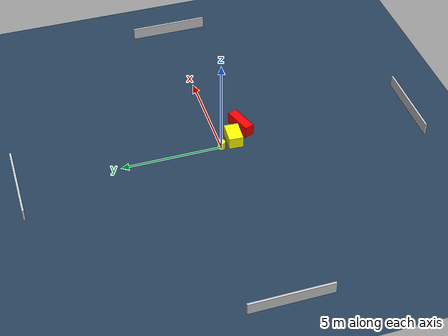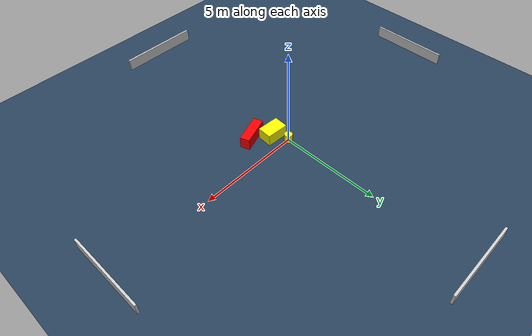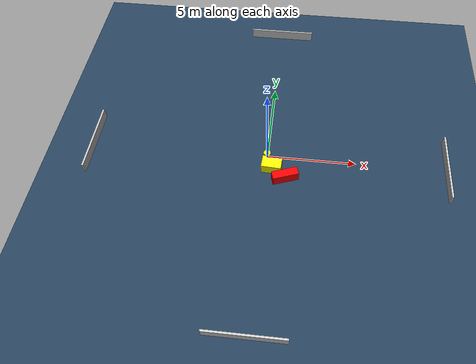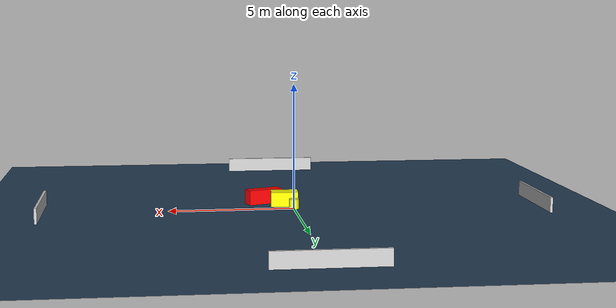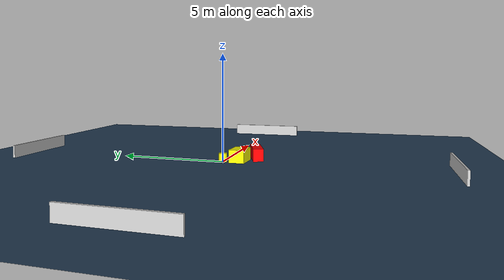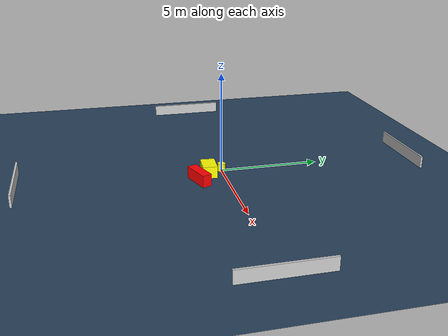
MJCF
<?xml version="1.0" ?>
<mujoco model="generated_environment">
  <option timestep="0.01" integrator="RK4" cone="elliptic"/>
  <default>
    <geom density="1"/>
  </default>
  <asset>
    <texture builtin="gradient" height="3072" name="skybox" rgb1="0.3 0.5 0.7" rgb2="0 0 0" type="skybox" width="512"/>
    <texture builtin="checker" height="300" name="groundplane" rgb1="0.2 0.3 0.4" rgb2="0.1 0.2 0.3" type="2d" width="300"/>
    <material name="groundplane" reflectance="0.2" texrepeat="5 5" texture="groundplane"/>
  </asset>
  <worldbody>
    <light dir="0 0 -1" directional="true" pos="0 0 1.5"/>
    <geom condim="3" friction="0.5 0.005 0.001" material="groundplane" name="floor" pos="0 0 0" size="0 0 0.05" type="plane"/>
    <body name="walls">
      <geom name="wall_1" condim="4" pos="-10.0 0.0 0.3" rgba="0.800000011920929 0.800000011920929 0.800000011920929 1.0" size="0.05 2.0 0.3" type="box"/>
      <geom name="wall_2" condim="4" pos="10.0 0.0 0.3" rgba="0.800000011920929 0.800000011920929 0.800000011920929 1.0" size="0.05 2.0 0.3" type="box"/>
      <geom name="wall_3" condim="4" pos="0.0 -10.0 0.3" rgba="0.800000011920929 0.800000011920929 0.800000011920929 1.0" size="2.0 0.05 0.3" type="box"/>
      <geom name="wall_4" condim="4" pos="0.0 10.0 0.3" rgba="0.800000011920929 0.800000011920929 0.800000011920929 1.0" size="2.0 0.05 0.3" type="box"/>
    </body>
    <body name="robot">
      <joint name="joint_x" type="slide" pos="0 0 0" axis="1 0 0"/>
      <joint name="joint_y" type="slide" pos="0 0 0" axis="0 1 0"/>
      <geom name="robot" type="cylinder" pos="0.0 0.0 0.2" size="0.2 0.2 0.0" mass="5.0" friction="1.0 0.005 0.0001" condim="4" rgba="1.0 1.0 0.0 1.0"/>
    </body>
    <body name="obstacle_1_movable">
      <geom name="obstacle_1_movable" condim="4" pos="0.3173896723629632 -0.7258676826526488 0.3" euler="0 0 86.72343383539621" friction="0.0 0.005 0.001" rgba="1.0 1.0 0.0 1.0" size="0.36060785040567406 0.5464543216317779 0.3" type="box" mass="0.1"/>
      <joint type="free"/>
    </body>
    <body name="obstacle_2_static">
      <geom name="obstacle_2_static" condim="4" pos="1.103431727872327 -1.3526474982733123 0.3" euler="0 0 199.34097790262192" friction="0.0 0.005 0.001" rgba="1.0 0.0 0.0 1.0" size="0.7207225886389024 0.2399315537872942 0.3" type="box"/>
    </body>
  </worldbody>
  <actuator>
    <motor name="actuator_x" joint="joint_x" gear="1" ctrlrange="-1 1"/>
    <motor name="actuator_y" joint="joint_y" gear="1" ctrlrange="-1 1"/>
  </actuator>
</mujoco>
